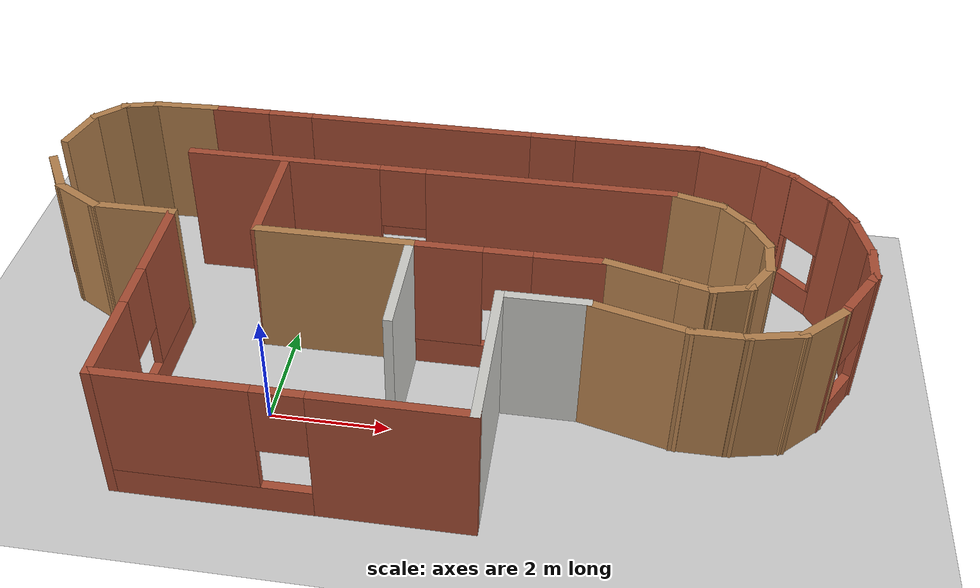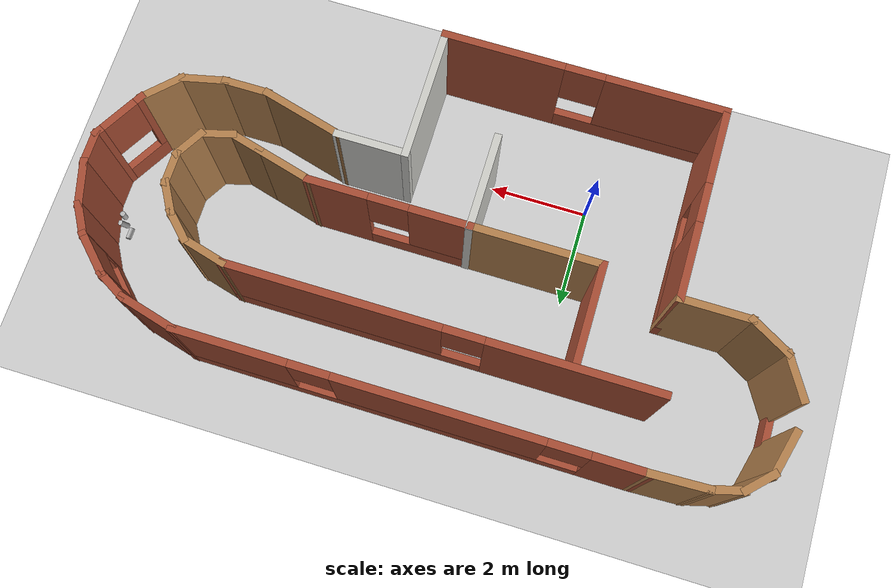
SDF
<sdf version="1.7">
 <world name="default">
  <model name="ground_plane">
   <static>1</static>
   <link name="link">
    <collision name="collision">
     <geometry><plane><normal>0 0 1</normal><size>100 100</size></plane></geometry>
     <surface><friction><ode><mu>100</mu><mu2>50</mu2></ode></friction></surface>
    </collision>
    <visual name="visual">
     <cast_shadows>0</cast_shadows>
     <geometry><plane><normal>0 0 1</normal><size>100 100</size></plane></geometry>
     <material>
      <script><uri>file://media/materials/scripts/gazebo.material</uri><name>Gazebo/Grey</name></script>
     </material>
    </visual>
   </link>
  </model>
  <model name="Maze2">
   <pose>2.43404 1.65089 0 0 -0 0</pose>
   <link name="Wall_0">
    <pose>-0.413831 2.09696 0 0 -0 0</pose>
    <visual name="Wall_0_Visual_0">
     <pose>-2.54133 0 1.25 0 -0 0</pose>
     <geometry><box><size>3.41735 0.15 2.5</size></box></geometry>
     <material>
      <script><uri>file://media/materials/scripts/gazebo.material</uri><name>Gazebo/Bricks</name></script>
      <ambient>1 1 1 1</ambient>
     </material>
     <meta><layer>0</layer></meta>
    </visual>
    <collision name="Wall_0_Collision_0">
     <geometry><box><size>3.41735 0.15 2.5</size></box></geometry>
     <pose>-2.54133 0 1.25 0 -0 0</pose>
    </collision>
    <visual name="Wall_0_Visual_1">
     <pose>1.70867 0 0.25 0 -0 0</pose>
     <geometry><box><size>5.08265 0.15 0.5</size></box></geometry>
     <material>
      <script><uri>file://media/materials/scripts/gazebo.material</uri><name>Gazebo/Bricks</name></script>
      <ambient>1 1 1 1</ambient>
     </material>
     <meta><layer>0</layer></meta>
    </visual>
    <collision name="Wall_0_Collision_1">
     <geometry><box><size>5.08265 0.15 0.5</size></box></geometry>
     <pose>1.70867 0 0.25 0 -0 0</pose>
    </collision>
    <visual name="Wall_0_Visual_2">
     <pose>2.10867 0 1.5 0 -0 0</pose>
     <geometry><box><size>4.28265 0.15 2</size></box></geometry>
     <material>
      <script><uri>file://media/materials/scripts/gazebo.material</uri><name>Gazebo/Bricks</name></script>
      <ambient>1 1 1 1</ambient>
     </material>
     <meta><layer>0</layer></meta>
    </visual>
    <collision name="Wall_0_Collision_2">
     <geometry><box><size>4.28265 0.15 2</size></box></geometry>
     <pose>2.10867 0 1.5 0 -0 0</pose>
    </collision>
    <visual name="Wall_0_Visual_3">
     <pose>-0.432651 0 1.9 0 -0 0</pose>
     <geometry><box><size>0.8 0.15 1.2</size></box></geometry>
     <material>
      <script><uri>file://media/materials/scripts/gazebo.material</uri><name>Gazebo/Bricks</name></script>
      <ambient>1 1 1 1</ambient>
     </material>
     <meta><layer>0</layer></meta>
    </visual>
    <collision name="Wall_0_Collision_3">
     <geometry><box><size>0.8 0.15 1.2</size></box></geometry>
     <pose>-0.432651 0 1.9 0 -0 0</pose>
    </collision>
   </link>
   <link name="Wall_1">
    <collision name="Wall_1_Collision">
     <geometry><box><size>1 0.15 2.5</size></box></geometry>
     <pose>0 0 1.25 0 -0 0</pose>
    </collision>
    <visual name="Wall_1_Visual">
     <pose>0 0 1.25 0 -0 0</pose>
     <geometry><box><size>1 0.15 2.5</size></box></geometry>
     <material>
      <script><uri>file://media/materials/scripts/gazebo.material</uri><name>Gazebo/Wood</name></script>
      <ambient>1 1 1 1</ambient>
     </material>
     <meta><layer>0</layer></meta>
    </visual>
    <pose>4.17169 1.98696 0 0 -0 -0.261799</pose>
   </link>
   <link name="Wall_10">
    <collision name="Wall_10_Collision">
     <geometry><box><size>2 0.15 2.5</size></box></geometry>
     <pose>0 0 1.25 0 -0 0</pose>
    </collision>
    <visual name="Wall_10_Visual">
     <pose>0 0 1.25 0 -0 0</pose>
     <geometry><box><size>2 0.15 2.5</size></box></geometry>
     <material>
      <script><uri>file://media/materials/scripts/gazebo.material</uri><name>Gazebo/CeilingTiled</name></script>
      <ambient>1 1 1 1</ambient>
     </material>
     <meta><layer>0</layer></meta>
    </visual>
    <pose>-0.371423 -0.816719 0 0 -0 -1.5708</pose>
   </link>
   <link name="Wall_18">
    <pose>-0.21383 3.51696 0 0 -0 0</pose>
    <visual name="Wall_18_Visual_0">
     <pose>-3.93602 0 1.25 0 -0 0</pose>
     <geometry><box><size>1.12796 0.15 2.5</size></box></geometry>
     <material>
      <script><uri>file://media/materials/scripts/gazebo.material</uri><name>Gazebo/Bricks</name></script>
      <ambient>1 1 1 1</ambient>
     </material>
     <meta><layer>0</layer></meta>
    </visual>
    <collision name="Wall_18_Collision_0">
     <geometry><box><size>1.12796 0.15 2.5</size></box></geometry>
     <pose>-3.93602 0 1.25 0 -0 0</pose>
    </collision>
    <visual name="Wall_18_Visual_1">
     <pose>0.56398 0 0.25 0 -0 0</pose>
     <geometry><box><size>7.87204 0.15 0.5</size></box></geometry>
     <material>
      <script><uri>file://media/materials/scripts/gazebo.material</uri><name>Gazebo/Bricks</name></script>
      <ambient>1 1 1 1</ambient>
     </material>
     <meta><layer>0</layer></meta>
    </visual>
    <collision name="Wall_18_Collision_1">
     <geometry><box><size>7.87204 0.15 0.5</size></box></geometry>
     <pose>0.56398 0 0.25 0 -0 0</pose>
    </collision>
    <visual name="Wall_18_Visual_2">
     <pose>-0.571089 0 1.5 0 -0 0</pose>
     <geometry><box><size>4.0019 0.15 2</size></box></geometry>
     <material>
      <script><uri>file://media/materials/scripts/gazebo.material</uri><name>Gazebo/Bricks</name></script>
      <ambient>1 1 1 1</ambient>
     </material>
     <meta><layer>0</layer></meta>
    </visual>
    <collision name="Wall_18_Collision_2">
     <geometry><box><size>4.0019 0.15 2</size></box></geometry>
     <pose>-0.571089 0 1.5 0 -0 0</pose>
    </collision>
    <visual name="Wall_18_Visual_3">
     <pose>3.36493 0 1.5 0 -0 0</pose>
     <geometry><box><size>2.27014 0.15 2</size></box></geometry>
     <material>
      <script><uri>file://media/materials/scripts/gazebo.material</uri><name>Gazebo/Bricks</name></script>
      <ambient>1 1 1 1</ambient>
     </material>
     <meta><layer>0</layer></meta>
    </visual>
    <collision name="Wall_18_Collision_3">
     <geometry><box><size>2.27014 0.15 2</size></box></geometry>
     <pose>3.36493 0 1.5 0 -0 0</pose>
    </collision>
    <visual name="Wall_18_Visual_4">
     <pose>-2.97204 0 1.9 0 -0 0</pose>
     <geometry><box><size>0.8 0.15 1.2</size></box></geometry>
     <material>
      <script><uri>file://media/materials/scripts/gazebo.material</uri><name>Gazebo/Bricks</name></script>
      <ambient>1 1 1 1</ambient>
     </material>
     <meta><layer>0</layer></meta>
    </visual>
    <collision name="Wall_18_Collision_4">
     <geometry><box><size>0.8 0.15 1.2</size></box></geometry>
     <pose>-2.97204 0 1.9 0 -0 0</pose>
    </collision>
    <visual name="Wall_18_Visual_5">
     <pose>1.82986 0 1.9 0 -0 0</pose>
     <geometry><box><size>0.8 0.15 1.2</size></box></geometry>
     <material>
      <script><uri>file://media/materials/scripts/gazebo.material</uri><name>Gazebo/Bricks</name></script>
      <ambient>1 1 1 1</ambient>
     </material>
     <meta><layer>0</layer></meta>
    </visual>
    <collision name="Wall_18_Collision_5">
     <geometry><box><size>0.8 0.15 1.2</size></box></geometry>
     <pose>1.82986 0 1.9 0 -0 0</pose>
    </collision>
   </link>
   <link name="Wall_19">
    <collision name="Wall_19_Collision">
     <geometry><box><size>1.25 0.15 2.5</size></box></geometry>
     <pose>0 0 1.25 0 -0 0</pose>
    </collision>
    <visual name="Wall_19_Visual">
     <pose>0 0 1.25 0 -0 0</pose>
     <geometry><box><size>1.25 0.15 2.5</size></box></geometry>
     <material>
      <script><uri>file://media/materials/scripts/gazebo.material</uri><name>Gazebo/Bricks</name></script>
      <ambient>1 1 1 1</ambient>
     </material>
     <meta><layer>0</layer></meta>
    </visual>
    <pose>4.74243 3.37461 0 0 -0 -0.261799</pose>
   </link>
   <link name="Wall_2">
    <collision name="Wall_2_Collision">
     <geometry><box><size>0.75 0.15 2.5</size></box></geometry>
     <pose>0 0 1.25 0 -0 0</pose>
    </collision>
    <visual name="Wall_2_Visual">
     <pose>0 0 1.25 0 -0 0</pose>
     <geometry><box><size>0.75 0.15 2.5</size></box></geometry>
     <material>
      <script><uri>file://media/materials/scripts/gazebo.material</uri><name>Gazebo/Wood</name></script>
      <ambient>1 1 1 1</ambient>
     </material>
     <meta><layer>0</layer></meta>
    </visual>
    <pose>4.79434 1.66483 0 0 -0 -0.785398</pose>
   </link>
   <link name="Wall_20">
    <collision name="Wall_20_Collision">
     <geometry><box><size>0.75 0.15 2.5</size></box></geometry>
     <pose>0 0 1.25 0 -0 0</pose>
    </collision>
    <visual name="Wall_20_Visual">
     <pose>0 0 1.25 0 -0 0</pose>
     <geometry><box><size>0.75 0.15 2.5</size></box></geometry>
     <material>
      <script><uri>file://media/materials/scripts/gazebo.material</uri><name>Gazebo/Bricks</name></script>
      <ambient>1 1 1 1</ambient>
     </material>
     <meta><layer>0</layer></meta>
    </visual>
    <pose>5.5335 3.08226 0 0 -0 -0.523599</pose>
   </link>
   <link name="Wall_21">
    <pose>6.09382 2.63174 0 0 -0 -0.785398</pose>
    <visual name="Wall_21_Visual_0">
     <pose>-0.453943 0 1.25 0 -0 0</pose>
     <geometry><box><size>0.092113 0.15 2.5</size></box></geometry>
     <material>
      <script><uri>file://media/materials/scripts/gazebo.material</uri><name>Gazebo/Bricks</name></script>
      <ambient>1 1 1 1</ambient>
     </material>
     <meta><layer>0</layer></meta>
    </visual>
    <collision name="Wall_21_Collision_0">
     <geometry><box><size>0.092113 0.15 2.5</size></box></geometry>
     <pose>-0.453943 0 1.25 0 -0 0</pose>
    </collision>
    <visual name="Wall_21_Visual_1">
     <pose>0.046057 0 0.25 0 -0 0</pose>
     <geometry><box><size>0.907887 0.15 0.5</size></box></geometry>
     <material>
      <script><uri>file://media/materials/scripts/gazebo.material</uri><name>Gazebo/Bricks</name></script>
      <ambient>1 1 1 1</ambient>
     </material>
     <meta><layer>0</layer></meta>
    </visual>
    <collision name="Wall_21_Collision_1">
     <geometry><box><size>0.907887 0.15 0.5</size></box></geometry>
     <pose>0.046057 0 0.25 0 -0 0</pose>
    </collision>
    <visual name="Wall_21_Visual_2">
     <pose>0.446057 0 1.5 0 -0 0</pose>
     <geometry><box><size>0.107887 0.15 2</size></box></geometry>
     <material>
      <script><uri>file://media/materials/scripts/gazebo.material</uri><name>Gazebo/Bricks</name></script>
      <ambient>1 1 1 1</ambient>
     </material>
     <meta><layer>0</layer></meta>
    </visual>
    <collision name="Wall_21_Collision_2">
     <geometry><box><size>0.107887 0.15 2</size></box></geometry>
     <pose>0.446057 0 1.5 0 -0 0</pose>
    </collision>
    <visual name="Wall_21_Visual_3">
     <pose>-0.007887 0 1.9 0 -0 0</pose>
     <geometry><box><size>0.8 0.15 1.2</size></box></geometry>
     <material>
      <script><uri>file://media/materials/scripts/gazebo.material</uri><name>Gazebo/Bricks</name></script>
      <ambient>1 1 1 1</ambient>
     </material>
     <meta><layer>0</layer></meta>
    </visual>
    <collision name="Wall_21_Collision_3">
     <geometry><box><size>0.8 0.15 1.2</size></box></geometry>
     <pose>-0.007887 0 1.9 0 -0 0</pose>
    </collision>
   </link>
   <link name="Wall_22">
    <collision name="Wall_22_Collision">
     <geometry><box><size>0.75 0.15 2.5</size></box></geometry>
     <pose>0 0 1.25 0 -0 0</pose>
    </collision>
    <visual name="Wall_22_Visual">
     <pose>0 0 1.25 0 -0 0</pose>
     <geometry><box><size>0.75 0.15 2.5</size></box></geometry>
     <material>
      <script><uri>file://media/materials/scripts/gazebo.material</uri><name>Gazebo/Bricks</name></script>
      <ambient>1 1 1 1</ambient>
     </material>
     <meta><layer>0</layer></meta>
    </visual>
    <pose>6.54434 2.07141 0 0 -0 -1.0472</pose>
   </link>
   <link name="Wall_23">
    <collision name="Wall_23_Collision">
     <geometry><box><size>1 0.15 2.5</size></box></geometry>
     <pose>0 0 1.25 0 -0 0</pose>
    </collision>
    <visual name="Wall_23_Visual">
     <pose>0 0 1.25 0 -0 0</pose>
     <geometry><box><size>1 0.15 2.5</size></box></geometry>
     <material>
      <script><uri>file://media/materials/scripts/gazebo.material</uri><name>Gazebo/Bricks</name></script>
      <ambient>1 1 1 1</ambient>
     </material>
     <meta><layer>0</layer></meta>
    </visual>
    <pose>6.80434 1.40108 0 0 -0 -1.309</pose>
   </link>
   <link name="Wall_24">
    <collision name="Wall_24_Collision">
     <geometry><box><size>0.75 0.15 2.5</size></box></geometry>
     <pose>0 0 1.25 0 -0 0</pose>
    </collision>
    <visual name="Wall_24_Visual">
     <pose>0 0 1.25 0 -0 0</pose>
     <geometry><box><size>0.75 0.15 2.5</size></box></geometry>
     <material>
      <script><uri>file://media/materials/scripts/gazebo.material</uri><name>Gazebo/Bricks</name></script>
      <ambient>1 1 1 1</ambient>
     </material>
     <meta><layer>0</layer></meta>
    </visual>
    <pose>6.91434 0.690563 0 0 -0 -1.5708</pose>
   </link>
   <link name="Wall_28">
    <pose>6.63934 -0.085751 0 0 -0 -2.0944</pose>
    <visual name="Wall_28_Visual_0">
     <pose>-0.511677 0 1.25 0 -0 0</pose>
     <geometry><box><size>0.226646 0.15 2.5</size></box></geometry>
     <material>
      <script><uri>file://media/materials/scripts/gazebo.material</uri><name>Gazebo/Bricks</name></script>
      <ambient>1 1 1 1</ambient>
     </material>
     <meta><layer>0</layer></meta>
    </visual>
    <collision name="Wall_28_Collision_0">
     <geometry><box><size>0.226646 0.15 2.5</size></box></geometry>
     <pose>-0.511677 0 1.25 0 -0 0</pose>
    </collision>
    <visual name="Wall_28_Visual_1">
     <pose>0.113323 0 0.25 0 -0 0</pose>
     <geometry><box><size>1.02335 0.15 0.5</size></box></geometry>
     <material>
      <script><uri>file://media/materials/scripts/gazebo.material</uri><name>Gazebo/Bricks</name></script>
      <ambient>1 1 1 1</ambient>
     </material>
     <meta><layer>0</layer></meta>
    </visual>
    <collision name="Wall_28_Collision_1">
     <geometry><box><size>1.02335 0.15 0.5</size></box></geometry>
     <pose>0.113323 0 0.25 0 -0 0</pose>
    </collision>
    <visual name="Wall_28_Visual_2">
     <pose>0.513323 0 1.5 0 -0 0</pose>
     <geometry><box><size>0.223354 0.15 2</size></box></geometry>
     <material>
      <script><uri>file://media/materials/scripts/gazebo.material</uri><name>Gazebo/Bricks</name></script>
      <ambient>1 1 1 1</ambient>
     </material>
     <meta><layer>0</layer></meta>
    </visual>
    <collision name="Wall_28_Collision_2">
     <geometry><box><size>0.223354 0.15 2</size></box></geometry>
     <pose>0.513323 0 1.5 0 -0 0</pose>
    </collision>
    <visual name="Wall_28_Visual_3">
     <pose>0.001646 0 1.9 0 -0 0</pose>
     <geometry><box><size>0.8 0.15 1.2</size></box></geometry>
     <material>
      <script><uri>file://media/materials/scripts/gazebo.material</uri><name>Gazebo/Bricks</name></script>
      <ambient>1 1 1 1</ambient>
     </material>
     <meta><layer>0</layer></meta>
    </visual>
    <collision name="Wall_28_Collision_3">
     <geometry><box><size>0.8 0.15 1.2</size></box></geometry>
     <pose>0.001646 0 1.9 0 -0 0</pose>
    </collision>
   </link>
   <link name="Wall_29">
    <collision name="Wall_29_Collision">
     <geometry><box><size>1 0.15 2.5</size></box></geometry>
     <pose>0 0 1.25 0 -0 0</pose>
    </collision>
    <visual name="Wall_29_Visual">
     <pose>0 0 1.25 0 -0 0</pose>
     <geometry><box><size>1 0.15 2.5</size></box></geometry>
     <material>
      <script><uri>file://media/materials/scripts/gazebo.material</uri><name>Gazebo/Wood</name></script>
      <ambient>1 1 1 1</ambient>
     </material>
     <meta><layer>0</layer></meta>
    </visual>
    <pose>6.06382 -0.862585 0 0 -0 -2.35619</pose>
   </link>
   <link name="Wall_3">
    <collision name="Wall_3_Collision">
     <geometry><box><size>0.75 0.15 2.5</size></box></geometry>
     <pose>0 0 1.25 0 -0 0</pose>
    </collision>
    <visual name="Wall_3_Visual">
     <pose>0 0 1.25 0 -0 0</pose>
     <geometry><box><size>0.75 0.15 2.5</size></box></geometry>
     <material>
      <script><uri>file://media/materials/scripts/gazebo.material</uri><name>Gazebo/Wood</name></script>
      <ambient>1 1 1 1</ambient>
     </material>
     <meta><layer>0</layer></meta>
    </visual>
    <pose>5.15647 1.19289 0 0 -0 -1.0472</pose>
   </link>
   <link name="Wall_30">
    <collision name="Wall_30_Collision">
     <geometry><box><size>0.991581 0.15 2.5</size></box></geometry>
     <pose>0 0 1.25 0 -0 0</pose>
    </collision>
    <visual name="Wall_30_Visual">
     <pose>0 0 1.25 0 -0 0</pose>
     <geometry><box><size>0.991581 0.15 2.5</size></box></geometry>
     <material>
      <script><uri>file://media/materials/scripts/gazebo.material</uri><name>Gazebo/Wood</name></script>
      <ambient>1 1 1 1</ambient>
     </material>
     <meta><layer>0</layer></meta>
    </visual>
    <pose>5.35278 -1.25551 0 0 -0 -2.92018</pose>
   </link>
   <link name="Wall_35">
    <collision name="Wall_35_Collision">
     <geometry><box><size>1 0.15 2.5</size></box></geometry>
     <pose>0 0 1.25 0 -0 0</pose>
    </collision>
    <visual name="Wall_35_Visual">
     <pose>0 0 1.25 0 -0 0</pose>
     <geometry><box><size>1 0.15 2.5</size></box></geometry>
     <material>
      <script><uri>file://media/materials/scripts/gazebo.material</uri><name>Gazebo/Wood</name></script>
      <ambient>1 1 1 1</ambient>
     </material>
     <meta><layer>0</layer></meta>
    </visual>
    <pose>4.51726 -1.34792 0 0 -0 3.14159</pose>
   </link>
   <link name="Wall_36">
    <collision name="Wall_36_Collision">
     <geometry><box><size>1.75 0.15 2.5</size></box></geometry>
     <pose>0 0 1.25 0 -0 0</pose>
    </collision>
    <visual name="Wall_36_Visual">
     <pose>0 0 1.25 0 -0 0</pose>
     <geometry><box><size>1.75 0.15 2.5</size></box></geometry>
     <material>
      <script><uri>file://media/materials/scripts/gazebo.material</uri><name>Gazebo/Wood</name></script>
      <ambient>1 1 1 1</ambient>
     </material>
     <meta><layer>0</layer></meta>
    </visual>
    <pose>3.31952 -1.14087 0 0 -0 2.87979</pose>
   </link>
   <link name="Wall_37">
    <collision name="Wall_37_Collision">
     <geometry><box><size>1.5 0.15 2.5</size></box></geometry>
     <pose>0 0 1.25 0 -0 0</pose>
    </collision>
    <visual name="Wall_37_Visual">
     <pose>0 0 1.25 0 -0 0</pose>
     <geometry><box><size>1.5 0.15 2.5</size></box></geometry>
     <material>
      <script><uri>file://media/materials/scripts/gazebo.material</uri><name>Gazebo/CeilingTiled</name></script>
      <ambient>1 1 1 1</ambient>
     </material>
     <meta><layer>0</layer></meta>
    </visual>
    <pose>1.87178 -0.933813 0 0 -0 3.14159</pose>
   </link>
   <link name="Wall_38">
    <collision name="Wall_38_Collision">
     <geometry><box><size>2.75 0.15 2.5</size></box></geometry>
     <pose>0 0 1.25 0 -0 0</pose>
    </collision>
    <visual name="Wall_38_Visual">
     <pose>0 0 1.25 0 -0 0</pose>
     <geometry><box><size>2.75 0.15 2.5</size></box></geometry>
     <material>
      <script><uri>file://media/materials/scripts/gazebo.material</uri><name>Gazebo/CeilingTiled</name></script>
      <ambient>1 1 1 1</ambient>
     </material>
     <meta><layer>0</layer></meta>
    </visual>
    <pose>1.19678 -2.23381 0 0 -0 -1.5708</pose>
   </link>
   <link name="Wall_39">
    <pose>-1.60322 -3.53381 0 0 -0 3.14159</pose>
    <visual name="Wall_39_Visual_0">
     <pose>-1.63033 0 1.25 0 -0 0</pose>
     <geometry><box><size>2.48934 0.15 2.5</size></box></geometry>
     <material>
      <script><uri>file://media/materials/scripts/gazebo.material</uri><name>Gazebo/Bricks</name></script>
      <ambient>1 1 1 1</ambient>
     </material>
     <meta><layer>0</layer></meta>
    </visual>
    <collision name="Wall_39_Collision_0">
     <geometry><box><size>2.48934 0.15 2.5</size></box></geometry>
     <pose>-1.63033 0 1.25 0 -0 0</pose>
    </collision>
    <visual name="Wall_39_Visual_1">
     <pose>1.24467 0 0.25 0 -0 0</pose>
     <geometry><box><size>3.26066 0.15 0.5</size></box></geometry>
     <material>
      <script><uri>file://media/materials/scripts/gazebo.material</uri><name>Gazebo/Bricks</name></script>
      <ambient>1 1 1 1</ambient>
     </material>
     <meta><layer>0</layer></meta>
    </visual>
    <collision name="Wall_39_Collision_1">
     <geometry><box><size>3.26066 0.15 0.5</size></box></geometry>
     <pose>1.24467 0 0.25 0 -0 0</pose>
    </collision>
    <visual name="Wall_39_Visual_2">
     <pose>1.64467 0 1.5 0 -0 0</pose>
     <geometry><box><size>2.46066 0.15 2</size></box></geometry>
     <material>
      <script><uri>file://media/materials/scripts/gazebo.material</uri><name>Gazebo/Bricks</name></script>
      <ambient>1 1 1 1</ambient>
     </material>
     <meta><layer>0</layer></meta>
    </visual>
    <collision name="Wall_39_Collision_2">
     <geometry><box><size>2.46066 0.15 2</size></box></geometry>
     <pose>1.64467 0 1.5 0 -0 0</pose>
    </collision>
    <visual name="Wall_39_Visual_3">
     <pose>0.014341 0 1.9 0 -0 0</pose>
     <geometry><box><size>0.8 0.15 1.2</size></box></geometry>
     <material>
      <script><uri>file://media/materials/scripts/gazebo.material</uri><name>Gazebo/Bricks</name></script>
      <ambient>1 1 1 1</ambient>
     </material>
     <meta><layer>0</layer></meta>
    </visual>
    <collision name="Wall_39_Collision_3">
     <geometry><box><size>0.8 0.15 1.2</size></box></geometry>
     <pose>0.014341 0 1.9 0 -0 0</pose>
    </collision>
   </link>
   <link name="Wall_4">
    <collision name="Wall_4_Collision">
     <geometry><box><size>0.75 0.15 2.5</size></box></geometry>
     <pose>0 0 1.25 0 -0 0</pose>
    </collision>
    <visual name="Wall_4_Visual">
     <pose>0 0 1.25 0 -0 0</pose>
     <geometry><box><size>0.75 0.15 2.5</size></box></geometry>
     <material>
      <script><uri>file://media/materials/scripts/gazebo.material</uri><name>Gazebo/Wood</name></script>
      <ambient>1 1 1 1</ambient>
     </material>
     <meta><layer>0</layer></meta>
    </visual>
    <pose>5.30647 0.633081 0 0 -0 -1.5708</pose>
   </link>
   <link name="Wall_40">
    <pose>-4.40322 -1.60881 0 0 -0 1.5708</pose>
    <visual name="Wall_40_Visual_0">
     <pose>-1.20229 0 1.25 0 -0 0</pose>
     <geometry><box><size>1.59543 0.15 2.5</size></box></geometry>
     <material>
      <script><uri>file://media/materials/scripts/gazebo.material</uri><name>Gazebo/Bricks</name></script>
      <ambient>1 1 1 1</ambient>
     </material>
     <meta><layer>0</layer></meta>
    </visual>
    <collision name="Wall_40_Collision_0">
     <geometry><box><size>1.59543 0.15 2.5</size></box></geometry>
     <pose>-1.20229 0 1.25 0 -0 0</pose>
    </collision>
    <visual name="Wall_40_Visual_1">
     <pose>0.797713 0 0.25 0 -0 0</pose>
     <geometry><box><size>2.40457 0.15 0.5</size></box></geometry>
     <material>
      <script><uri>file://media/materials/scripts/gazebo.material</uri><name>Gazebo/Bricks</name></script>
      <ambient>1 1 1 1</ambient>
     </material>
     <meta><layer>0</layer></meta>
    </visual>
    <collision name="Wall_40_Collision_1">
     <geometry><box><size>2.40457 0.15 0.5</size></box></geometry>
     <pose>0.797713 0 0.25 0 -0 0</pose>
    </collision>
    <visual name="Wall_40_Visual_2">
     <pose>1.19771 0 1.5 0 -0 0</pose>
     <geometry><box><size>1.60457 0.15 2</size></box></geometry>
     <material>
      <script><uri>file://media/materials/scripts/gazebo.material</uri><name>Gazebo/Bricks</name></script>
      <ambient>1 1 1 1</ambient>
     </material>
     <meta><layer>0</layer></meta>
    </visual>
    <collision name="Wall_40_Collision_2">
     <geometry><box><size>1.60457 0.15 2</size></box></geometry>
     <pose>1.19771 0 1.5 0 -0 0</pose>
    </collision>
    <visual name="Wall_40_Visual_3">
     <pose>-0.004573 0 1.9 0 -0 0</pose>
     <geometry><box><size>0.8 0.15 1.2</size></box></geometry>
     <material>
      <script><uri>file://media/materials/scripts/gazebo.material</uri><name>Gazebo/Bricks</name></script>
      <ambient>1 1 1 1</ambient>
     </material>
     <meta><layer>0</layer></meta>
    </visual>
    <collision name="Wall_40_Collision_3">
     <geometry><box><size>0.8 0.15 1.2</size></box></geometry>
     <pose>-0.004573 0 1.9 0 -0 0</pose>
    </collision>
   </link>
   <link name="Wall_42">
    <collision name="Wall_42_Collision">
     <geometry><box><size>2.69392 0.15 2.5</size></box></geometry>
     <pose>0 0 1.25 0 -0 0</pose>
    </collision>
    <visual name="Wall_42_Visual">
     <pose>0 0 1.25 0 -0 0</pose>
     <geometry><box><size>2.69392 0.15 2.5</size></box></geometry>
     <material>
      <script><uri>file://media/materials/scripts/gazebo.material</uri><name>Gazebo/Wood</name></script>
      <ambient>1 1 1 1</ambient>
     </material>
     <meta><layer>0</layer></meta>
    </visual>
    <pose>-1.64329 0.098167 0 0 -0 3.14159</pose>
   </link>
   <link name="Wall_44">
    <collision name="Wall_44_Collision">
     <geometry><box><size>2 0.15 2.5</size></box></geometry>
     <pose>0 0 1.25 0 -0 0</pose>
    </collision>
    <visual name="Wall_44_Visual">
     <pose>0 0 1.25 0 -0 0</pose>
     <geometry><box><size>2 0.15 2.5</size></box></geometry>
     <material>
      <script><uri>file://media/materials/scripts/gazebo.material</uri><name>Gazebo/Bricks</name></script>
      <ambient>1 1 1 1</ambient>
     </material>
     <meta><layer>0</layer></meta>
    </visual>
    <pose>-2.91516 1.02317 0 0 -0 1.5708</pose>
   </link>
   <link name="Wall_46">
    <collision name="Wall_46_Collision">
     <geometry><box><size>1.5 0.15 2.5</size></box></geometry>
     <pose>0 0 1.25 0 -0 0</pose>
    </collision>
    <visual name="Wall_46_Visual">
     <pose>0 0 1.25 0 -0 0</pose>
     <geometry><box><size>1.5 0.15 2.5</size></box></geometry>
     <material>
      <script><uri>file://media/materials/scripts/gazebo.material</uri><name>Gazebo/Wood</name></script>
      <ambient>1 1 1 1</ambient>
     </material>
     <meta><layer>0</layer></meta>
    </visual>
    <pose>-5.07822 0.316187 0 0 -0 3.14159</pose>
   </link>
   <link name="Wall_47">
    <collision name="Wall_47_Collision">
     <geometry><box><size>1 0.15 2.5</size></box></geometry>
     <pose>0 0 1.25 0 -0 0</pose>
    </collision>
    <visual name="Wall_47_Visual">
     <pose>0 0 1.25 0 -0 0</pose>
     <geometry><box><size>1 0.15 2.5</size></box></geometry>
     <material>
      <script><uri>file://media/materials/scripts/gazebo.material</uri><name>Gazebo/Wood</name></script>
      <ambient>1 1 1 1</ambient>
     </material>
     <meta><layer>0</layer></meta>
    </visual>
    <pose>-6.12128 0.528687 0 0 -0 2.61799</pose>
   </link>
   <link name="Wall_48">
    <collision name="Wall_48_Collision">
     <geometry><box><size>1 0.15 2.5</size></box></geometry>
     <pose>0 0 1.25 0 -0 0</pose>
    </collision>
    <visual name="Wall_48_Visual">
     <pose>0 0 1.25 0 -0 0</pose>
     <geometry><box><size>1 0.15 2.5</size></box></geometry>
     <material>
      <script><uri>file://media/materials/scripts/gazebo.material</uri><name>Gazebo/Wood</name></script>
      <ambient>1 1 1 1</ambient>
     </material>
     <meta><layer>0</layer></meta>
    </visual>
    <pose>-6.70184 1.10925 0 0 -0 2.0944</pose>
   </link>
   <link name="Wall_49">
    <pose>-6.91434 1.77731 0 0 -0 1.5708</pose>
    <visual name="Wall_49_Visual_0">
     <pose>0 0 0.25 0 -0 0</pose>
     <geometry><box><size>0.75 0.15 0.5</size></box></geometry>
     <material>
      <script><uri>file://media/materials/scripts/gazebo.material</uri><name>Gazebo/Bricks</name></script>
      <ambient>1 1 1 1</ambient>
     </material>
     <meta><layer>0</layer></meta>
    </visual>
    <collision name="Wall_49_Collision_0">
     <geometry><box><size>0.75 0.15 0.5</size></box></geometry>
     <pose>0 0 0.25 0 -0 0</pose>
    </collision>
   </link>
   <link name="Wall_5">
    <collision name="Wall_5_Collision">
     <geometry><box><size>0.75 0.15 2.5</size></box></geometry>
     <pose>0 0 1.25 0 -0 0</pose>
    </collision>
    <visual name="Wall_5_Visual">
     <pose>0 0 1.25 0 -0 0</pose>
     <geometry><box><size>0.75 0.15 2.5</size></box></geometry>
     <material>
      <script><uri>file://media/materials/scripts/gazebo.material</uri><name>Gazebo/Wood</name></script>
      <ambient>1 1 1 1</ambient>
     </material>
     <meta><layer>0</layer></meta>
    </visual>
    <pose>5.15647 0.073274 0 0 -0 -2.0944</pose>
   </link>
   <link name="Wall_50">
    <collision name="Wall_50_Collision">
     <geometry><box><size>1 0.15 2.5</size></box></geometry>
     <pose>0 0 1.25 0 -0 0</pose>
    </collision>
    <visual name="Wall_50_Visual">
     <pose>0 0 1.25 0 -0 0</pose>
     <geometry><box><size>1 0.15 2.5</size></box></geometry>
     <material>
      <script><uri>file://media/materials/scripts/gazebo.material</uri><name>Gazebo/Wood</name></script>
      <ambient>1 1 1 1</ambient>
     </material>
     <meta><layer>0</layer></meta>
    </visual>
    <pose>-6.80434 2.48783 0 0 -0 1.309</pose>
   </link>
   <link name="Wall_51">
    <collision name="Wall_51_Collision">
     <geometry><box><size>0.75 0.15 2.5</size></box></geometry>
     <pose>0 0 1.25 0 -0 0</pose>
    </collision>
    <visual name="Wall_51_Visual">
     <pose>0 0 1.25 0 -0 0</pose>
     <geometry><box><size>0.75 0.15 2.5</size></box></geometry>
     <material>
      <script><uri>file://media/materials/scripts/gazebo.material</uri><name>Gazebo/Wood</name></script>
      <ambient>1 1 1 1</ambient>
     </material>
     <meta><layer>0</layer></meta>
    </visual>
    <pose>-6.48221 3.11048 0 0 -0 0.785398</pose>
   </link>
   <link name="Wall_52">
    <collision name="Wall_52_Collision">
     <geometry><box><size>0.75 0.15 2.5</size></box></geometry>
     <pose>0 0 1.25 0 -0 0</pose>
    </collision>
    <visual name="Wall_52_Visual">
     <pose>0 0 1.25 0 -0 0</pose>
     <geometry><box><size>0.75 0.15 2.5</size></box></geometry>
     <material>
      <script><uri>file://media/materials/scripts/gazebo.material</uri><name>Gazebo/Wood</name></script>
      <ambient>1 1 1 1</ambient>
     </material>
     <meta><layer>0</layer></meta>
    </visual>
    <pose>-5.9803 3.40026 0 0 -0 0.261799</pose>
   </link>
   <link name="Wall_53">
    <collision name="Wall_53_Collision">
     <geometry><box><size>1.20242 0.15 2.5</size></box></geometry>
     <pose>0 0 1.25 0 -0 0</pose>
    </collision>
    <visual name="Wall_53_Visual">
     <pose>0 0 1.25 0 -0 0</pose>
     <geometry><box><size>1.20242 0.15 2.5</size></box></geometry>
     <material>
      <script><uri>file://media/materials/scripts/gazebo.material</uri><name>Gazebo/Wood</name></script>
      <ambient>1 1 1 1</ambient>
     </material>
     <meta><layer>0</layer></meta>
    </visual>
    <pose>-5.16468 3.49743 0 0 -0 0.037119</pose>
   </link>
   <link name="Wall_6">
    <collision name="Wall_6_Collision">
     <geometry><box><size>0.75 0.15 2.5</size></box></geometry>
     <pose>0 0 1.25 0 -0 0</pose>
    </collision>
    <visual name="Wall_6_Visual">
     <pose>0 0 1.25 0 -0 0</pose>
     <geometry><box><size>0.75 0.15 2.5</size></box></geometry>
     <material>
      <script><uri>file://media/materials/scripts/gazebo.material</uri><name>Gazebo/Wood</name></script>
      <ambient>1 1 1 1</ambient>
     </material>
     <meta><layer>0</layer></meta>
    </visual>
    <pose>4.71669 -0.26418 0 0 -0 -2.87979</pose>
   </link>
   <link name="Wall_7">
    <collision name="Wall_7_Collision">
     <geometry><box><size>0.75 0.15 2.5</size></box></geometry>
     <pose>0 0 1.25 0 -0 0</pose>
    </collision>
    <visual name="Wall_7_Visual">
     <pose>0 0 1.25 0 -0 0</pose>
     <geometry><box><size>0.75 0.15 2.5</size></box></geometry>
     <material>
      <script><uri>file://media/materials/scripts/gazebo.material</uri><name>Gazebo/Wood</name></script>
      <ambient>1 1 1 1</ambient>
     </material>
     <meta><layer>0</layer></meta>
    </visual>
    <pose>4.13714 -0.26418 0 0 -0 2.87979</pose>
   </link>
   <link name="Wall_8">
    <collision name="Wall_8_Collision">
     <geometry><box><size>1.25 0.15 2.5</size></box></geometry>
     <pose>0 0 1.25 0 -0 0</pose>
    </collision>
    <visual name="Wall_8_Visual">
     <pose>0 0 1.25 0 -0 0</pose>
     <geometry><box><size>1.25 0.15 2.5</size></box></geometry>
     <material>
      <script><uri>file://media/materials/scripts/gazebo.material</uri><name>Gazebo/Wood</name></script>
      <ambient>1 1 1 1</ambient>
     </material>
     <meta><layer>0</layer></meta>
    </visual>
    <pose>3.3161 -0.044183 0 0 -0 2.87979</pose>
   </link>
   <link name="Wall_9">
    <pose>1.20671 0.098167 0 0 -0 3.14159</pose>
    <visual name="Wall_9_Visual_0">
     <pose>-1.02934 0 1.25 0 -0 0</pose>
     <geometry><box><size>1.24773 0.15 2.5</size></box></geometry>
     <material>
      <script><uri>file://media/materials/scripts/gazebo.material</uri><name>Gazebo/Bricks</name></script>
      <ambient>1 1 1 1</ambient>
     </material>
     <meta><layer>0</layer></meta>
    </visual>
    <collision name="Wall_9_Collision_0">
     <geometry><box><size>1.24773 0.15 2.5</size></box></geometry>
     <pose>-1.02934 0 1.25 0 -0 0</pose>
    </collision>
    <visual name="Wall_9_Visual_1">
     <pose>0.623864 0 0.25 0 -0 0</pose>
     <geometry><box><size>2.05868 0.15 0.5</size></box></geometry>
     <material>
      <script><uri>file://media/materials/scripts/gazebo.material</uri><name>Gazebo/Bricks</name></script>
      <ambient>1 1 1 1</ambient>
     </material>
     <meta><layer>0</layer></meta>
    </visual>
    <collision name="Wall_9_Collision_1">
     <geometry><box><size>2.05868 0.15 0.5</size></box></geometry>
     <pose>0.623864 0 0.25 0 -0 0</pose>
    </collision>
    <visual name="Wall_9_Visual_2">
     <pose>1.02386 0 1.5 0 -0 0</pose>
     <geometry><box><size>1.25868 0.15 2</size></box></geometry>
     <material>
      <script><uri>file://media/materials/scripts/gazebo.material</uri><name>Gazebo/Bricks</name></script>
      <ambient>1 1 1 1</ambient>
     </material>
     <meta><layer>0</layer></meta>
    </visual>
    <collision name="Wall_9_Collision_2">
     <geometry><box><size>1.25868 0.15 2</size></box></geometry>
     <pose>1.02386 0 1.5 0 -0 0</pose>
    </collision>
    <visual name="Wall_9_Visual_3">
     <pose>-0.005476 0 1.9 0 -0 0</pose>
     <geometry><box><size>0.8 0.15 1.2</size></box></geometry>
     <material>
      <script><uri>file://media/materials/scripts/gazebo.material</uri><name>Gazebo/Bricks</name></script>
      <ambient>1 1 1 1</ambient>
     </material>
     <meta><layer>0</layer></meta>
    </visual>
    <collision name="Wall_9_Collision_3">
     <geometry><box><size>0.8 0.15 1.2</size></box></geometry>
     <pose>-0.005476 0 1.9 0 -0 0</pose>
    </collision>
   </link>
   <static>1</static>
  </model>
  <model name="beer">
   <link name="link">
    <pose>0 0 0.115 0 -0 0</pose>
    <inertial>
     <mass>0.39</mass>
     <inertia><ixx>0.00058</ixx><ixy>0</ixy><ixz>0</ixz><iyy>0.00058</iyy><iyz>0</iyz><izz>0.00019</izz></inertia>
    </inertial>
    <collision name="collision">
     <geometry><cylinder><radius>0.055</radius><length>0.23</length></cylinder></geometry>
    </collision>
    <visual name="visual">
     <geometry><cylinder><radius>0.055</radius><length>0.23</length></cylinder></geometry>
     <material>
      <script>
       <uri>model://beer/materials/scripts</uri>
       <uri>model://beer/materials/textures</uri>
       <name>Beer/Diffuse</name>
      </script>
     </material>
    </visual>
   </link>
   <pose>9.01616 3.00433 0.024583 -0.178479 0.429948 -0.123402</pose>
  </model>
  <model name="beer_0">
   <link name="link">
    <pose>0 0 0.115 0 -0 0</pose>
    <inertial>
     <mass>0.39</mass>
     <inertia><ixx>0.00058</ixx><ixy>0</ixy><ixz>0</ixz><iyy>0.00058</iyy><iyz>0</iyz><izz>0.00019</izz></inertia>
    </inertial>
    <collision name="collision">
     <geometry><cylinder><radius>0.055</radius><length>0.23</length></cylinder></geometry>
    </collision>
    <visual name="visual">
     <geometry><cylinder><radius>0.055</radius><length>0.23</length></cylinder></geometry>
     <material>
      <script>
       <uri>model://beer/materials/scripts</uri>
       <uri>model://beer/materials/textures</uri>
       <name>Beer/Diffuse</name>
      </script>
     </material>
    </visual>
   </link>
   <pose>9.1419 2.83996 -2e-06 1e-06 -0 -1e-06</pose>
  </model>
  <model name="beer_1">
   <link name="link">
    <pose>0 0 0.115 0 -0 0</pose>
    <inertial>
     <mass>0.39</mass>
     <inertia><ixx>0.00058</ixx><ixy>0</ixy><ixz>0</ixz><iyy>0.00058</iyy><iyz>0</iyz><izz>0.00019</izz></inertia>
    </inertial>
    <collision name="collision">
     <geometry><cylinder><radius>0.055</radius><length>0.23</length></cylinder></geometry>
    </collision>
    <visual name="visual">
     <geometry><cylinder><radius>0.055</radius><length>0.23</length></cylinder></geometry>
     <material>
      <script>
       <uri>model://beer/materials/scripts</uri>
       <uri>model://beer/materials/textures</uri>
       <name>Beer/Diffuse</name>
      </script>
     </material>
    </visual>
   </link>
   <pose>8.896 3.27012 0.055 1.57115 -0 0</pose>
  </model>
 </world>
</sdf>
